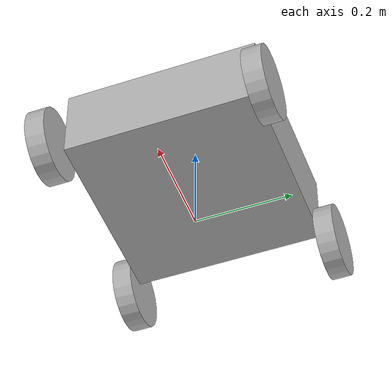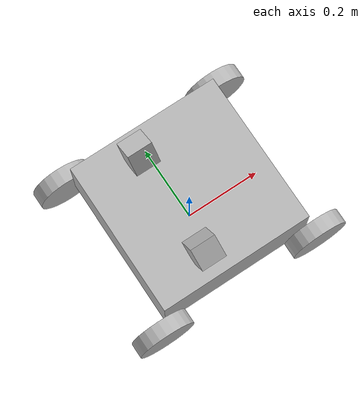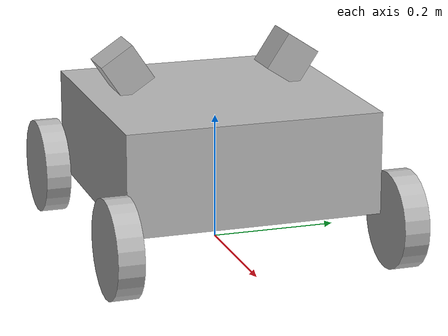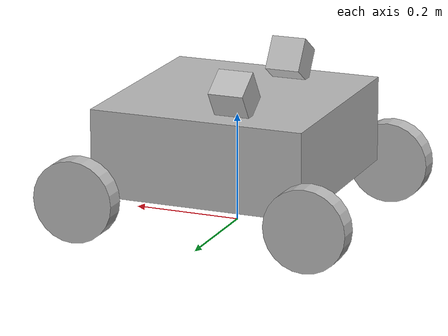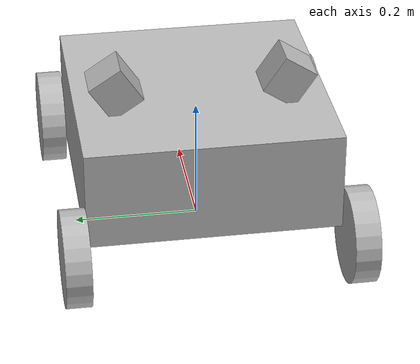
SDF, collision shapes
<?xml version="1.0"?>
<sdf version="1.7">
  <model name="sentry">
    <self_collide>false</self_collide>

    <link name="base_link">
      <pose>0 0 0.20 0 0 0</pose>
      <inertial>
        <pose>0 0 0 0 0 0</pose>
        <mass>35.0</mass>
        <inertia><ixx>0.583333</ixx><iyy>0.583333</iyy><izz>0.933333</izz></inertia>
      </inertial>
      <collision name="base_collision">
        <pose>0 0 -0.04 0 0 0</pose>
        <geometry><box><size>0.40 0.40 0.16</size></box></geometry>
        <surface>
          <friction><ode><mu>0.8</mu><mu2>0.8</mu2></ode></friction>
          <contact><ode><kp>1000000</kp><kd>100</kd></ode></contact>
        </surface>
      </collision>
      <visual name="base_visual">
        <pose>0 0 -0.175736785 0 0 0</pose>
        <geometry><mesh><uri>model://pb2025_visuals/meshes/chassis_base.dae</uri><scale>1 1 0.852565282</scale></mesh></geometry>
      </visual>
    </link>

    <link name="front_left_knuckle">
      <pose>0.22 0.22 0.076 0 0 0</pose>
      <inertial><mass>0.15</mass><inertia><ixx>0.00004</ixx><iyy>0.00004</iyy><izz>0.00004</izz></inertia></inertial>
    </link>
    <link name="front_left_wheel">
      <pose>0.22 0.22 0.076 -1.57079632679 0 0</pose>
      <inertial><mass>0.6</mass><inertia><ixx>0.0009464</ixx><iyy>0.0009464</iyy><izz>0.0017328</izz></inertia></inertial>
      <collision name="collision">
        <geometry><cylinder><radius>0.076</radius><length>0.04</length></cylinder></geometry>
        <surface><friction><ode><mu>1.0</mu><mu2>1.0</mu2></ode></friction></surface>
      </collision>
      <visual name="visual"><geometry><cylinder><radius>0.076</radius><length>0.04</length></cylinder></geometry></visual>
    </link>
    <link name="front_right_knuckle">
      <pose>0.22 -0.22 0.076 0 0 0</pose>
      <inertial><mass>0.15</mass><inertia><ixx>0.00004</ixx><iyy>0.00004</iyy><izz>0.00004</izz></inertia></inertial>
    </link>
    <link name="front_right_wheel">
      <pose>0.22 -0.22 0.076 -1.57079632679 0 0</pose>
      <inertial><mass>0.6</mass><inertia><ixx>0.0009464</ixx><iyy>0.0009464</iyy><izz>0.0017328</izz></inertia></inertial>
      <collision name="collision">
        <geometry><cylinder><radius>0.076</radius><length>0.04</length></cylinder></geometry>
        <surface><friction><ode><mu>1.0</mu><mu2>1.0</mu2></ode></friction></surface>
      </collision>
      <visual name="visual"><geometry><cylinder><radius>0.076</radius><length>0.04</length></cylinder></geometry></visual>
    </link>
    <link name="rear_left_wheel">
      <pose>-0.22 0.22 0.076 -1.57079632679 0 0</pose>
      <inertial><mass>0.6</mass><inertia><ixx>0.0009464</ixx><iyy>0.0009464</iyy><izz>0.0017328</izz></inertia></inertial>
      <collision name="collision">
        <geometry><cylinder><radius>0.076</radius><length>0.04</length></cylinder></geometry>
        <surface><friction><ode><mu>1.0</mu><mu2>1.0</mu2></ode></friction></surface>
      </collision>
      <visual name="visual"><geometry><cylinder><radius>0.076</radius><length>0.04</length></cylinder></geometry></visual>
    </link>
    <link name="rear_right_wheel">
      <pose>-0.22 -0.22 0.076 -1.57079632679 0 0</pose>
      <inertial><mass>0.6</mass><inertia><ixx>0.0009464</ixx><iyy>0.0009464</iyy><izz>0.0017328</izz></inertia></inertial>
      <collision name="collision">
        <geometry><cylinder><radius>0.076</radius><length>0.04</length></cylinder></geometry>
        <surface><friction><ode><mu>1.0</mu><mu2>1.0</mu2></ode></friction></surface>
      </collision>
      <visual name="visual"><geometry><cylinder><radius>0.076</radius><length>0.04</length></cylinder></geometry></visual>
    </link>

    <joint name="front_left_steering_joint" type="revolute">
      <parent>base_link</parent><child>front_left_knuckle</child>
      <axis><xyz>0 0 1</xyz><limit><lower>-0.52</lower><upper>0.52</upper><effort>50</effort><velocity>1.0</velocity></limit><dynamics><damping>0.05</damping></dynamics></axis>
    </joint>
    <joint name="front_left_joint" type="revolute">
      <parent>front_left_knuckle</parent><child>front_left_wheel</child>
      <axis><xyz>0 0 1</xyz><limit><effort>50</effort><velocity>60</velocity></limit><dynamics><damping>0.05</damping></dynamics></axis>
    </joint>
    <joint name="front_right_steering_joint" type="revolute">
      <parent>base_link</parent><child>front_right_knuckle</child>
      <axis><xyz>0 0 1</xyz><limit><lower>-0.52</lower><upper>0.52</upper><effort>50</effort><velocity>1.0</velocity></limit><dynamics><damping>0.05</damping></dynamics></axis>
    </joint>
    <joint name="front_right_joint" type="revolute">
      <parent>front_right_knuckle</parent><child>front_right_wheel</child>
      <axis><xyz>0 0 1</xyz><limit><effort>50</effort><velocity>60</velocity></limit><dynamics><damping>0.05</damping></dynamics></axis>
    </joint>
    <joint name="rear_left_joint" type="revolute">
      <parent>base_link</parent><child>rear_left_wheel</child>
      <axis><xyz>0 0 1</xyz><limit><effort>50</effort><velocity>60</velocity></limit><dynamics><damping>0.05</damping></dynamics></axis>
    </joint>
    <joint name="rear_right_joint" type="revolute">
      <parent>base_link</parent><child>rear_right_wheel</child>
      <axis><xyz>0 0 1</xyz><limit><effort>50</effort><velocity>60</velocity></limit><dynamics><damping>0.05</damping></dynamics></axis>
    </joint>

    <!-- Level common LiDAR/IMU frame used by Point-LIO after both sensors are fused. -->
    <link name="sim_lidar">
      <pose>0 -0.2 0.3 0 0 0</pose>
      <inertial><mass>0.01</mass><inertia><ixx>0.000001</ixx><iyy>0.000001</iyy><izz>0.000001</izz></inertia></inertial>
      <sensor name="sim_imu" type="imu"><topic>/sim/imu</topic><update_rate>200</update_rate><always_on>true</always_on><gz_frame_id>sim_lidar</gz_frame_id></sensor>
    </link>
    <joint name="sim_lidar_joint" type="fixed"><parent>base_link</parent><child>sim_lidar</child></joint>

    <link name="sim_lidar_left">
      <pose>-0.0496 0.136 0.274965449328 -0.5835987756 0 0</pose>
      <inertial><mass>0.265</mass><inertia><ixx>0.000173</ixx><iyy>0.000173</iyy><izz>0.000187</izz></inertia></inertial>
      <collision name="collision"><geometry><box><size>0.065 0.060 0.065</size></box></geometry></collision>
      <visual name="visual"><pose>0 0 0 0 0 3.14159265359</pose><geometry><mesh><uri>model://mid360/meshes/mid360.dae</uri></mesh></geometry></visual>
      <sensor name="sim_lidar_left_front" type="gpu_lidar">
        <pose>0 0 0.03 0 0 0</pose>
        <topic>/sim/lidar/left/front</topic><update_rate>10</update_rate><always_on>true</always_on><visualize>false</visualize>
        <gz_frame_id>sim_lidar_left</gz_frame_id>
        <lidar>
          <scan><horizontal><samples>360</samples><resolution>1</resolution><min_angle>-1.57079632679</min_angle><max_angle>1.57079632679</max_angle></horizontal><vertical><samples>120</samples><resolution>1</resolution><min_angle>-0.1274090354</min_angle><max_angle>0.9128076904</max_angle></vertical></scan>
          <range><min>0.10</min><max>40.0</max><resolution>0.01</resolution></range>
          <noise><type>gaussian</type><mean>0.0</mean><stddev>0.0</stddev></noise>
        </lidar>
      </sensor>
      <sensor name="sim_lidar_left_rear" type="gpu_lidar">
        <pose>0 0 0.03 0 0 3.14159265359</pose>
        <topic>/sim/lidar/left/rear</topic><update_rate>10</update_rate><always_on>true</always_on><visualize>false</visualize>
        <gz_frame_id>sim_lidar_left</gz_frame_id>
        <lidar>
          <scan><horizontal><samples>360</samples><resolution>1</resolution><min_angle>-1.57079632679</min_angle><max_angle>1.57079632679</max_angle></horizontal><vertical><samples>120</samples><resolution>1</resolution><min_angle>-0.1274090354</min_angle><max_angle>0.9128076904</max_angle></vertical></scan>
          <range><min>0.10</min><max>40.0</max><resolution>0.01</resolution></range>
          <noise><type>gaussian</type><mean>0.0</mean><stddev>0.0</stddev></noise>
        </lidar>
      </sensor>
    </link>
    <joint name="sim_lidar_left_joint" type="fixed"><parent>base_link</parent><child>sim_lidar_left</child></joint>

    <link name="sim_lidar_right">
      <pose>-0.0496 -0.136 0.274965449328 0.5835987756 0 0</pose>
      <inertial><mass>0.265</mass><inertia><ixx>0.000173</ixx><iyy>0.000173</iyy><izz>0.000187</izz></inertia></inertial>
      <collision name="collision"><geometry><box><size>0.065 0.060 0.065</size></box></geometry></collision>
      <visual name="visual"><pose>0 0 0 0 0 3.14159265359</pose><geometry><mesh><uri>model://mid360/meshes/mid360.dae</uri></mesh></geometry></visual>
      <sensor name="sim_lidar_right_front" type="gpu_lidar">
        <pose>0 0 0.03 0 0 0</pose>
        <topic>/sim/lidar/right/front</topic><update_rate>10</update_rate><always_on>true</always_on><visualize>false</visualize>
        <gz_frame_id>sim_lidar_right</gz_frame_id>
        <lidar>
          <scan><horizontal><samples>360</samples><resolution>1</resolution><min_angle>-1.57079632679</min_angle><max_angle>1.57079632679</max_angle></horizontal><vertical><samples>120</samples><resolution>1</resolution><min_angle>-0.1274090354</min_angle><max_angle>0.9128076904</max_angle></vertical></scan>
          <range><min>0.10</min><max>40.0</max><resolution>0.01</resolution></range>
          <noise><type>gaussian</type><mean>0.0</mean><stddev>0.0</stddev></noise>
        </lidar>
      </sensor>
      <sensor name="sim_lidar_right_rear" type="gpu_lidar">
        <pose>0 0 0.03 0 0 3.14159265359</pose>
        <topic>/sim/lidar/right/rear</topic><update_rate>10</update_rate><always_on>true</always_on><visualize>false</visualize>
        <gz_frame_id>sim_lidar_right</gz_frame_id>
        <lidar>
          <scan><horizontal><samples>360</samples><resolution>1</resolution><min_angle>-1.57079632679</min_angle><max_angle>1.57079632679</max_angle></horizontal><vertical><samples>120</samples><resolution>1</resolution><min_angle>-0.1274090354</min_angle><max_angle>0.9128076904</max_angle></vertical></scan>
          <range><min>0.10</min><max>40.0</max><resolution>0.01</resolution></range>
          <noise><type>gaussian</type><mean>0.0</mean><stddev>0.0</stddev></noise>
        </lidar>
      </sensor>
    </link>
    <joint name="sim_lidar_right_joint" type="fixed"><parent>base_link</parent><child>sim_lidar_right</child></joint>

    <plugin filename="AckermannBicycle" name="sentry_simulation::AckermannBicycle">
      <left_joint>rear_left_joint</left_joint><right_joint>rear_right_joint</right_joint>
      <left_steering_joint>front_left_steering_joint</left_steering_joint>
      <right_steering_joint>front_right_steering_joint</right_steering_joint>
      <wheel_base>0.44</wheel_base><wheel_separation>0.44</wheel_separation><kingpin_width>0.44</kingpin_width>
      <wheel_radius>0.076</wheel_radius><steering_limit>0.4</steering_limit>
      <topic>/sentry/cmd_vel</topic>
    </plugin>
    <plugin filename="gz-sim-joint-state-publisher-system" name="gz::sim::systems::JointStatePublisher">
      <joint_name>front_left_steering_joint</joint_name>
      <joint_name>front_right_steering_joint</joint_name>
      <topic>/sentry/steering_joint_state</topic>
    </plugin>
    <!-- The publisher measures the model origin: center XY, original model Z. -->
    <plugin filename="gz-sim-odometry-publisher-system" name="gz::sim::systems::OdometryPublisher">
      <odom_frame>sentry/odom</odom_frame><robot_base_frame>sentry/base_link</robot_base_frame>
      <dimensions>3</dimensions><odom_publish_frequency>100</odom_publish_frequency>
      <odom_topic>/sentry/ground_truth_odometry</odom_topic><tf_topic>/sentry/ground_truth_tf</tf_topic>
    </plugin>
  </model>
</sdf>
